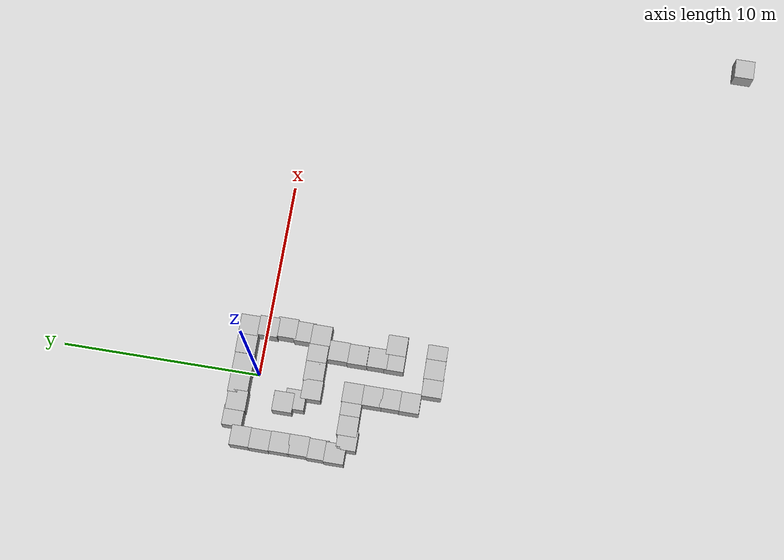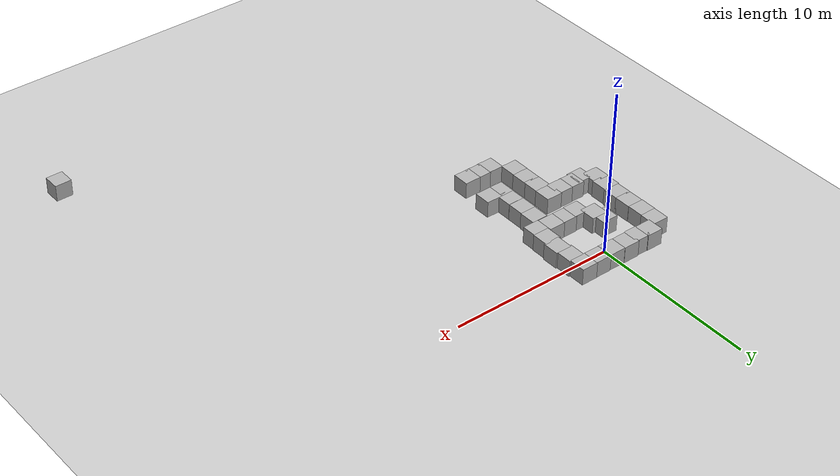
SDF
<sdf version='1.10'>
  <world name='empty'>
    <physics name='1ms' type='ode'>
      <max_step_size>0.01</max_step_size>
      <real_time_factor>1</real_time_factor>
      <real_time_update_rate>100</real_time_update_rate>
    </physics>
    <plugin name='gz::sim::systems::Physics' filename='gz-sim-physics-system'/>
    <plugin name='gz::sim::systems::UserCommands' filename='gz-sim-user-commands-system'/>
    <plugin name='gz::sim::systems::SceneBroadcaster' filename='gz-sim-scene-broadcaster-system'/>
    <plugin name='gz::sim::systems::Contact' filename='gz-sim-contact-system'/>
    <gravity>0 0 -9.8000000000000007</gravity>
    <magnetic_field>5.5644999999999998e-06 2.2875799999999999e-05 -4.2388400000000002e-05</magnetic_field>
    <atmosphere type='adiabatic'/>
    <scene>
      <ambient>0.400000006 0.400000006 0.400000006 1</ambient>
      <background>0.699999988 0.699999988 0.699999988 1</background>
      <shadows>true</shadows>
    </scene>
    <model name='ground_plane'>
      <static>true</static>
      <link name='link'>
        <collision name='collision'>
          <geometry>
            <plane>
              <normal>0 0 1</normal>
              <size>100 100</size>
            </plane>
          </geometry>
          <surface>
            <friction>
              <ode/>
            </friction>
            <bounce/>
            <contact/>
          </surface>
        </collision>
        <visual name='visual'>
          <geometry>
            <plane>
              <normal>0 0 1</normal>
              <size>100 100</size>
            </plane>
          </geometry>
          <material>
            <ambient>0.800000012 0.800000012 0.800000012 1</ambient>
            <diffuse>0.800000012 0.800000012 0.800000012 1</diffuse>
            <specular>0.800000012 0.800000012 0.800000012 1</specular>
          </material>
        </visual>
        <pose>0 0 0 0 0 0</pose>
        <inertial>
          <pose>0 0 0 0 0 0</pose>
          <mass>1</mass>
          <inertia>
            <ixx>1</ixx>
            <ixy>0</ixy>
            <ixz>0</ixz>
            <iyy>1</iyy>
            <iyz>0</iyz>
            <izz>1</izz>
          </inertia>
        </inertial>
        <enable_wind>false</enable_wind>
      </link>
      <pose>0 0 0 0 0 0</pose>
      <self_collide>false</self_collide>
    </model>
    <model name='box'>
      <pose>-0.46231014821973282 -2.8007523237210812 0.49999999850826193 3.3184219064231324e-08 -3.6042765376233806e-08 0.00028884011541206473</pose>
      <link name='box_link'>
        <inertial>
          <inertia>
            <ixx>0.16666</ixx>
            <ixy>0</ixy>
            <ixz>0</ixz>
            <iyy>0.16666</iyy>
            <iyz>0</iyz>
            <izz>0.16666</izz>
          </inertia>
          <mass>1</mass>
          <pose>0 0 0 0 0 0</pose>
        </inertial>
        <collision name='box_collision'>
          <geometry>
            <box>
              <size>1 1 1</size>
            </box>
          </geometry>
          <surface>
            <friction>
              <ode/>
            </friction>
            <bounce/>
            <contact/>
          </surface>
        </collision>
        <visual name='box_visual'>
          <geometry>
            <box>
              <size>1 1 1</size>
            </box>
          </geometry>
          <material>
            <ambient>0.300000012 0.300000012 0.300000012 1</ambient>
            <diffuse>0.699999988 0.699999988 0.699999988 1</diffuse>
            <specular>1 1 1 1</specular>
          </material>
        </visual>
        <pose>0 0 0 0 0 0</pose>
        <enable_wind>false</enable_wind>
      </link>
      <static>false</static>
      <self_collide>false</self_collide>
    </model>
    <model name='box_0'>
      <pose>0.45757162777259169 -2.7680361309008594 0.49999999189633754 1.0606111420421139e-08 -2.0301614148831082e-08 8.9467876404793617e-07</pose>
      <link name='box_link'>
        <inertial>
          <inertia>
            <ixx>0.16666</ixx>
            <ixy>0</ixy>
            <ixz>0</ixz>
            <iyy>0.16666</iyy>
            <iyz>0</iyz>
            <izz>0.16666</izz>
          </inertia>
          <mass>1</mass>
          <pose>0 0 0 0 0 0</pose>
        </inertial>
        <collision name='box_collision'>
          <geometry>
            <box>
              <size>1 1 1</size>
            </box>
          </geometry>
          <surface>
            <friction>
              <ode/>
            </friction>
            <bounce/>
            <contact/>
          </surface>
        </collision>
        <visual name='box_visual'>
          <geometry>
            <box>
              <size>1 1 1</size>
            </box>
          </geometry>
          <material>
            <ambient>0.300000012 0.300000012 0.300000012 1</ambient>
            <diffuse>0.699999988 0.699999988 0.699999988 1</diffuse>
            <specular>1 1 1 1</specular>
          </material>
        </visual>
        <pose>0 0 0 0 0 0</pose>
        <enable_wind>false</enable_wind>
      </link>
      <static>false</static>
      <self_collide>false</self_collide>
    </model>
    <model name='box_1'>
      <pose>1.3306659757281374 -2.7586643185917725 0.49999999096088388 -1.7392410454047729e-09 2.0081837951053886e-08 2.491828952487131e-07</pose>
      <link name='box_link'>
        <inertial>
          <inertia>
            <ixx>0.16666</ixx>
            <ixy>0</ixy>
            <ixz>0</ixz>
            <iyy>0.16666</iyy>
            <iyz>0</iyz>
            <izz>0.16666</izz>
          </inertia>
          <mass>1</mass>
          <pose>0 0 0 0 0 0</pose>
        </inertial>
        <collision name='box_collision'>
          <geometry>
            <box>
              <size>1 1 1</size>
            </box>
          </geometry>
          <surface>
            <friction>
              <ode/>
            </friction>
            <bounce/>
            <contact/>
          </surface>
        </collision>
        <visual name='box_visual'>
          <geometry>
            <box>
              <size>1 1 1</size>
            </box>
          </geometry>
          <material>
            <ambient>0.300000012 0.300000012 0.300000012 1</ambient>
            <diffuse>0.699999988 0.699999988 0.699999988 1</diffuse>
            <specular>1 1 1 1</specular>
          </material>
        </visual>
        <pose>0 0 0 0 0 0</pose>
        <enable_wind>false</enable_wind>
      </link>
      <static>false</static>
      <self_collide>false</self_collide>
    </model>
    <model name='box_2'>
      <pose>2.3306659612493656 -2.787174723107015 0.49999999737826462 3.4503554564486201e-08 2.946792865070553e-08 2.4148821971305719e-07</pose>
      <link name='box_link'>
        <inertial>
          <inertia>
            <ixx>0.16666</ixx>
            <ixy>0</ixy>
            <ixz>0</ixz>
            <iyy>0.16666</iyy>
            <iyz>0</iyz>
            <izz>0.16666</izz>
          </inertia>
          <mass>1</mass>
          <pose>0 0 0 0 0 0</pose>
        </inertial>
        <collision name='box_collision'>
          <geometry>
            <box>
              <size>1 1 1</size>
            </box>
          </geometry>
          <surface>
            <friction>
              <ode/>
            </friction>
            <bounce/>
            <contact/>
          </surface>
        </collision>
        <visual name='box_visual'>
          <geometry>
            <box>
              <size>1 1 1</size>
            </box>
          </geometry>
          <material>
            <ambient>0.300000012 0.300000012 0.300000012 1</ambient>
            <diffuse>0.699999988 0.699999988 0.699999988 1</diffuse>
            <specular>1 1 1 1</specular>
          </material>
        </visual>
        <pose>0 0 0 0 0 0</pose>
        <enable_wind>false</enable_wind>
      </link>
      <static>false</static>
      <self_collide>false</self_collide>
    </model>
    <model name='box_3'>
      <pose>2.3600774885623452 -1.9470473748627266 0.50000003345574462 1.0278935913985194e-07 -2.2012120489651564e-09 3.9431460759859238e-07</pose>
      <link name='box_link'>
        <inertial>
          <inertia>
            <ixx>0.16666</ixx>
            <ixy>0</ixy>
            <ixz>0</ixz>
            <iyy>0.16666</iyy>
            <iyz>0</iyz>
            <izz>0.16666</izz>
          </inertia>
          <mass>1</mass>
          <pose>0 0 0 0 0 0</pose>
        </inertial>
        <collision name='box_collision'>
          <geometry>
            <box>
              <size>1 1 1</size>
            </box>
          </geometry>
          <surface>
            <friction>
              <ode/>
            </friction>
            <bounce/>
            <contact/>
          </surface>
        </collision>
        <visual name='box_visual'>
          <geometry>
            <box>
              <size>1 1 1</size>
            </box>
          </geometry>
          <material>
            <ambient>0.300000012 0.300000012 0.300000012 1</ambient>
            <diffuse>0.699999988 0.699999988 0.699999988 1</diffuse>
            <specular>1 1 1 1</specular>
          </material>
        </visual>
        <pose>0 0 0 0 0 0</pose>
        <enable_wind>false</enable_wind>
      </link>
      <static>false</static>
      <self_collide>false</self_collide>
    </model>
    <model name='box_4'>
      <pose>2.4359946241116783 -1.0352860710084204 0.49999998940007151 8.3460843535615869e-09 5.7418235312635529e-09 2.0379947642606503e-07</pose>
      <link name='box_link'>
        <inertial>
          <inertia>
            <ixx>0.16666</ixx>
            <ixy>0</ixy>
            <ixz>0</ixz>
            <iyy>0.16666</iyy>
            <iyz>0</iyz>
            <izz>0.16666</izz>
          </inertia>
          <mass>1</mass>
          <pose>0 0 0 0 0 0</pose>
        </inertial>
        <collision name='box_collision'>
          <geometry>
            <box>
              <size>1 1 1</size>
            </box>
          </geometry>
          <surface>
            <friction>
              <ode/>
            </friction>
            <bounce/>
            <contact/>
          </surface>
        </collision>
        <visual name='box_visual'>
          <geometry>
            <box>
              <size>1 1 1</size>
            </box>
          </geometry>
          <material>
            <ambient>0.300000012 0.300000012 0.300000012 1</ambient>
            <diffuse>0.699999988 0.699999988 0.699999988 1</diffuse>
            <specular>1 1 1 1</specular>
          </material>
        </visual>
        <pose>0 0 0 0 0 0</pose>
        <enable_wind>false</enable_wind>
      </link>
      <static>false</static>
      <self_collide>false</self_collide>
    </model>
    <model name='box_5'>
      <pose>2.3600765884650095 -0.10545765165537074 0.49999999075475821 -2.0616440690057439e-08 -2.2519022345955068e-09 1.1841850875562475e-07</pose>
      <link name='box_link'>
        <inertial>
          <inertia>
            <ixx>0.16666</ixx>
            <ixy>0</ixy>
            <ixz>0</ixz>
            <iyy>0.16666</iyy>
            <iyz>0</iyz>
            <izz>0.16666</izz>
          </inertia>
          <mass>1</mass>
          <pose>0 0 0 0 0 0</pose>
        </inertial>
        <collision name='box_collision'>
          <geometry>
            <box>
              <size>1 1 1</size>
            </box>
          </geometry>
          <surface>
            <friction>
              <ode/>
            </friction>
            <bounce/>
            <contact/>
          </surface>
        </collision>
        <visual name='box_visual'>
          <geometry>
            <box>
              <size>1 1 1</size>
            </box>
          </geometry>
          <material>
            <ambient>0.300000012 0.300000012 0.300000012 1</ambient>
            <diffuse>0.699999988 0.699999988 0.699999988 1</diffuse>
            <specular>1 1 1 1</specular>
          </material>
        </visual>
        <pose>0 0 0 0 0 0</pose>
        <enable_wind>false</enable_wind>
      </link>
      <static>false</static>
      <self_collide>false</self_collide>
    </model>
    <model name='box_6'>
      <pose>2.2846531374119463 0.8474247673059172 0.49999998850259647 -1.5037086403888694e-08 7.9669379731509246e-09 6.4849796673212504e-07</pose>
      <link name='box_link'>
        <inertial>
          <inertia>
            <ixx>0.16666</ixx>
            <ixy>0</ixy>
            <ixz>0</ixz>
            <iyy>0.16666</iyy>
            <iyz>0</iyz>
            <izz>0.16666</izz>
          </inertia>
          <mass>1</mass>
          <pose>0 0 0 0 0 0</pose>
        </inertial>
        <collision name='box_collision'>
          <geometry>
            <box>
              <size>1 1 1</size>
            </box>
          </geometry>
          <surface>
            <friction>
              <ode/>
            </friction>
            <bounce/>
            <contact/>
          </surface>
        </collision>
        <visual name='box_visual'>
          <geometry>
            <box>
              <size>1 1 1</size>
            </box>
          </geometry>
          <material>
            <ambient>0.300000012 0.300000012 0.300000012 1</ambient>
            <diffuse>0.699999988 0.699999988 0.699999988 1</diffuse>
            <specular>1 1 1 1</specular>
          </material>
        </visual>
        <pose>0 0 0 0 0 0</pose>
        <enable_wind>false</enable_wind>
      </link>
      <static>false</static>
      <self_collide>false</self_collide>
    </model>
    <model name='box_7'>
      <pose>1.3165730865357361 0.82990761327570417 0.50000002879560579 -1.8003449641016264e-08 -8.9972798193831952e-08 0.0025438147975501168</pose>
      <link name='box_link'>
        <inertial>
          <inertia>
            <ixx>0.16666</ixx>
            <ixy>0</ixy>
            <ixz>0</ixz>
            <iyy>0.16666</iyy>
            <iyz>0</iyz>
            <izz>0.16666</izz>
          </inertia>
          <mass>1</mass>
          <pose>0 0 0 0 0 0</pose>
        </inertial>
        <collision name='box_collision'>
          <geometry>
            <box>
              <size>1 1 1</size>
            </box>
          </geometry>
          <surface>
            <friction>
              <ode/>
            </friction>
            <bounce/>
            <contact/>
          </surface>
        </collision>
        <visual name='box_visual'>
          <geometry>
            <box>
              <size>1 1 1</size>
            </box>
          </geometry>
          <material>
            <ambient>0.300000012 0.300000012 0.300000012 1</ambient>
            <diffuse>0.699999988 0.699999988 0.699999988 1</diffuse>
            <specular>1 1 1 1</specular>
          </material>
        </visual>
        <pose>0 0 0 0 0 0</pose>
        <enable_wind>false</enable_wind>
      </link>
      <static>false</static>
      <self_collide>false</self_collide>
    </model>
    <model name='box_8'>
      <pose>0.31226063415860911 0.81274707296286464 0.49999999028316078 -4.9608076977865652e-10 1.9787767466195089e-08 1.6066220259875388e-07</pose>
      <link name='box_link'>
        <inertial>
          <inertia>
            <ixx>0.16666</ixx>
            <ixy>0</ixy>
            <ixz>0</ixz>
            <iyy>0.16666</iyy>
            <iyz>0</iyz>
            <izz>0.16666</izz>
          </inertia>
          <mass>1</mass>
          <pose>0 0 0 0 0 0</pose>
        </inertial>
        <collision name='box_collision'>
          <geometry>
            <box>
              <size>1 1 1</size>
            </box>
          </geometry>
          <surface>
            <friction>
              <ode/>
            </friction>
            <bounce/>
            <contact/>
          </surface>
        </collision>
        <visual name='box_visual'>
          <geometry>
            <box>
              <size>1 1 1</size>
            </box>
          </geometry>
          <material>
            <ambient>0.300000012 0.300000012 0.300000012 1</ambient>
            <diffuse>0.699999988 0.699999988 0.699999988 1</diffuse>
            <specular>1 1 1 1</specular>
          </material>
        </visual>
        <pose>0 0 0 0 0 0</pose>
        <enable_wind>false</enable_wind>
      </link>
      <static>false</static>
      <self_collide>false</self_collide>
    </model>
    <model name='box_9'>
      <pose>-1.0762400000000001 -2.069 0.5 -4.1608699999999983e-09 2.5407600000000022e-07 1.7331200000000005e-06</pose>
      <link name='box_link'>
        <inertial>
          <inertia>
            <ixx>0.16666</ixx>
            <ixy>0</ixy>
            <ixz>0</ixz>
            <iyy>0.16666</iyy>
            <iyz>0</iyz>
            <izz>0.16666</izz>
          </inertia>
          <mass>1</mass>
          <pose>0 0 0 0 0 0</pose>
        </inertial>
        <collision name='box_collision'>
          <geometry>
            <box>
              <size>1 1 1</size>
            </box>
          </geometry>
          <surface>
            <friction>
              <ode/>
            </friction>
            <bounce/>
            <contact/>
          </surface>
        </collision>
        <visual name='box_visual'>
          <geometry>
            <box>
              <size>1 1 1</size>
            </box>
          </geometry>
          <material>
            <ambient>0.300000012 0.300000012 0.300000012 1</ambient>
            <diffuse>0.699999988 0.699999988 0.699999988 1</diffuse>
            <specular>1 1 1 1</specular>
          </material>
        </visual>
        <pose>0 0 0 0 0 0</pose>
        <enable_wind>false</enable_wind>
      </link>
      <static>false</static>
      <self_collide>false</self_collide>
    </model>
    <model name='box_10'>
      <pose>-1.2844958271402318 -1.4974475946622212 0.49999999021171826 -1.9526379733045971e-08 -2.0693910197921286e-11 2.9288672032092372e-06</pose>
      <link name='box_link'>
        <inertial>
          <inertia>
            <ixx>0.16666</ixx>
            <ixy>0</ixy>
            <ixz>0</ixz>
            <iyy>0.16666</iyy>
            <iyz>0</iyz>
            <izz>0.16666</izz>
          </inertia>
          <mass>1</mass>
          <pose>0 0 0 0 0 0</pose>
        </inertial>
        <collision name='box_collision'>
          <geometry>
            <box>
              <size>1 1 1</size>
            </box>
          </geometry>
          <surface>
            <friction>
              <ode/>
            </friction>
            <bounce/>
            <contact/>
          </surface>
        </collision>
        <visual name='box_visual'>
          <geometry>
            <box>
              <size>1 1 1</size>
            </box>
          </geometry>
          <material>
            <ambient>0.300000012 0.300000012 0.300000012 1</ambient>
            <diffuse>0.699999988 0.699999988 0.699999988 1</diffuse>
            <specular>1 1 1 1</specular>
          </material>
        </visual>
        <pose>0 0 0 0 0 0</pose>
        <enable_wind>false</enable_wind>
      </link>
      <static>false</static>
      <self_collide>false</self_collide>
    </model>
    <model name='box_11'>
      <pose>-0.68773934846194673 0.82527752154240563 0.49999999031476183 -7.4899146793528042e-10 1.9858012016734597e-08 1.6242129367132441e-07</pose>
      <link name='box_link'>
        <inertial>
          <inertia>
            <ixx>0.16666</ixx>
            <ixy>0</ixy>
            <ixz>0</ixz>
            <iyy>0.16666</iyy>
            <iyz>0</iyz>
            <izz>0.16666</izz>
          </inertia>
          <mass>1</mass>
          <pose>0 0 0 0 0 0</pose>
        </inertial>
        <collision name='box_collision'>
          <geometry>
            <box>
              <size>1 1 1</size>
            </box>
          </geometry>
          <surface>
            <friction>
              <ode/>
            </friction>
            <bounce/>
            <contact/>
          </surface>
        </collision>
        <visual name='box_visual'>
          <geometry>
            <box>
              <size>1 1 1</size>
            </box>
          </geometry>
          <material>
            <ambient>0.300000012 0.300000012 0.300000012 1</ambient>
            <diffuse>0.699999988 0.699999988 0.699999988 1</diffuse>
            <specular>1 1 1 1</specular>
          </material>
        </visual>
        <pose>0 0 0 0 0 0</pose>
        <enable_wind>false</enable_wind>
      </link>
      <static>false</static>
      <self_collide>false</self_collide>
    </model>
    <model name='box_12'>
      <pose>-1.5638700000000001 0.78282399999999996 0.5 -2.6156400000000008e-08 8.465710000000002e-08 2.2988699999999999e-08</pose>
      <link name='box_link'>
        <inertial>
          <inertia>
            <ixx>0.16666</ixx>
            <ixy>0</ixy>
            <ixz>0</ixz>
            <iyy>0.16666</iyy>
            <iyz>0</iyz>
            <izz>0.16666</izz>
          </inertia>
          <mass>1</mass>
          <pose>0 0 0 0 0 0</pose>
        </inertial>
        <collision name='box_collision'>
          <geometry>
            <box>
              <size>1 1 1</size>
            </box>
          </geometry>
          <surface>
            <friction>
              <ode/>
            </friction>
            <bounce/>
            <contact/>
          </surface>
        </collision>
        <visual name='box_visual'>
          <geometry>
            <box>
              <size>1 1 1</size>
            </box>
          </geometry>
          <material>
            <ambient>0.300000012 0.300000012 0.300000012 1</ambient>
            <diffuse>0.699999988 0.699999988 0.699999988 1</diffuse>
            <specular>1 1 1 1</specular>
          </material>
        </visual>
        <pose>0 0 0 0 0 0</pose>
        <enable_wind>false</enable_wind>
      </link>
      <static>false</static>
      <self_collide>false</self_collide>
    </model>
    <model name='box_13'>
      <pose>-3.2949591378675289 0.2602838231517311 0.49999999933900557 -3.6714972710687992e-08 -3.663110694616601e-08 8.5185663700374556e-07</pose>
      <link name='box_link'>
        <inertial>
          <inertia>
            <ixx>0.16666</ixx>
            <ixy>0</ixy>
            <ixz>0</ixz>
            <iyy>0.16666</iyy>
            <iyz>0</iyz>
            <izz>0.16666</izz>
          </inertia>
          <mass>1</mass>
          <pose>0 0 0 0 0 0</pose>
        </inertial>
        <collision name='box_collision'>
          <geometry>
            <box>
              <size>1 1 1</size>
            </box>
          </geometry>
          <surface>
            <friction>
              <ode/>
            </friction>
            <bounce/>
            <contact/>
          </surface>
        </collision>
        <visual name='box_visual'>
          <geometry>
            <box>
              <size>1 1 1</size>
            </box>
          </geometry>
          <material>
            <ambient>0.300000012 0.300000012 0.300000012 1</ambient>
            <diffuse>0.699999988 0.699999988 0.699999988 1</diffuse>
            <specular>1 1 1 1</specular>
          </material>
        </visual>
        <pose>0 0 0 0 0 0</pose>
        <enable_wind>false</enable_wind>
      </link>
      <static>false</static>
      <self_collide>false</self_collide>
    </model>
    <model name='box_14'>
      <pose>-2.3682771581531692 0.81293833359732315 0.49999999040469273 -4.8644965362523836e-10 -1.9660429321628531e-08 4.468410548385612e-07</pose>
      <link name='box_link'>
        <inertial>
          <inertia>
            <ixx>0.16666</ixx>
            <ixy>0</ixy>
            <ixz>0</ixz>
            <iyy>0.16666</iyy>
            <iyz>0</iyz>
            <izz>0.16666</izz>
          </inertia>
          <mass>1</mass>
          <pose>0 0 0 0 0 0</pose>
        </inertial>
        <collision name='box_collision'>
          <geometry>
            <box>
              <size>1 1 1</size>
            </box>
          </geometry>
          <surface>
            <friction>
              <ode/>
            </friction>
            <bounce/>
            <contact/>
          </surface>
        </collision>
        <visual name='box_visual'>
          <geometry>
            <box>
              <size>1 1 1</size>
            </box>
          </geometry>
          <material>
            <ambient>0.300000012 0.300000012 0.300000012 1</ambient>
            <diffuse>0.699999988 0.699999988 0.699999988 1</diffuse>
            <specular>1 1 1 1</specular>
          </material>
        </visual>
        <pose>0 0 0 0 0 0</pose>
        <enable_wind>false</enable_wind>
      </link>
      <static>false</static>
      <self_collide>false</self_collide>
    </model>
    <model name='box_15'>
      <pose>-3.3139081951275409 -0.70650816753915779 0.49999999133164785 -2.1078780603230077e-08 3.8568460558797437e-09 6.5859339331094907e-07</pose>
      <link name='box_link'>
        <inertial>
          <inertia>
            <ixx>0.16666</ixx>
            <ixy>0</ixy>
            <ixz>0</ixz>
            <iyy>0.16666</iyy>
            <iyz>0</iyz>
            <izz>0.16666</izz>
          </inertia>
          <mass>1</mass>
          <pose>0 0 0 0 0 0</pose>
        </inertial>
        <collision name='box_collision'>
          <geometry>
            <box>
              <size>1 1 1</size>
            </box>
          </geometry>
          <surface>
            <friction>
              <ode/>
            </friction>
            <bounce/>
            <contact/>
          </surface>
        </collision>
        <visual name='box_visual'>
          <geometry>
            <box>
              <size>1 1 1</size>
            </box>
          </geometry>
          <material>
            <ambient>0.300000012 0.300000012 0.300000012 1</ambient>
            <diffuse>0.699999988 0.699999988 0.699999988 1</diffuse>
            <specular>1 1 1 1</specular>
          </material>
        </visual>
        <pose>0 0 0 0 0 0</pose>
        <enable_wind>false</enable_wind>
      </link>
      <static>false</static>
      <self_collide>false</self_collide>
    </model>
    <model name='box_16'>
      <pose>-3.2980796052084544 -1.7065036848377897 0.4999999923795545 -2.0108513573953034e-08 -1.7926865342844833e-08 1.2508621676115749e-07</pose>
      <link name='box_link'>
        <inertial>
          <inertia>
            <ixx>0.16666</ixx>
            <ixy>0</ixy>
            <ixz>0</ixz>
            <iyy>0.16666</iyy>
            <iyz>0</iyz>
            <izz>0.16666</izz>
          </inertia>
          <mass>1</mass>
          <pose>0 0 0 0 0 0</pose>
        </inertial>
        <collision name='box_collision'>
          <geometry>
            <box>
              <size>1 1 1</size>
            </box>
          </geometry>
          <surface>
            <friction>
              <ode/>
            </friction>
            <bounce/>
            <contact/>
          </surface>
        </collision>
        <visual name='box_visual'>
          <geometry>
            <box>
              <size>1 1 1</size>
            </box>
          </geometry>
          <material>
            <ambient>0.300000012 0.300000012 0.300000012 1</ambient>
            <diffuse>0.699999988 0.699999988 0.699999988 1</diffuse>
            <specular>1 1 1 1</specular>
          </material>
        </visual>
        <pose>0 0 0 0 0 0</pose>
        <enable_wind>false</enable_wind>
      </link>
      <static>false</static>
      <self_collide>false</self_collide>
    </model>
    <model name='box_17'>
      <pose>-3.2980800023235588 -2.6345272917793663 0.4999999904973455 1.9913674531394581e-08 9.4283583943932923e-10 -7.7887016027334096e-07</pose>
      <link name='box_link'>
        <inertial>
          <inertia>
            <ixx>0.16666</ixx>
            <ixy>0</ixy>
            <ixz>0</ixz>
            <iyy>0.16666</iyy>
            <iyz>0</iyz>
            <izz>0.16666</izz>
          </inertia>
          <mass>1</mass>
          <pose>0 0 0 0 0 0</pose>
        </inertial>
        <collision name='box_collision'>
          <geometry>
            <box>
              <size>1 1 1</size>
            </box>
          </geometry>
          <surface>
            <friction>
              <ode/>
            </friction>
            <bounce/>
            <contact/>
          </surface>
        </collision>
        <visual name='box_visual'>
          <geometry>
            <box>
              <size>1 1 1</size>
            </box>
          </geometry>
          <material>
            <ambient>0.300000012 0.300000012 0.300000012 1</ambient>
            <diffuse>0.699999988 0.699999988 0.699999988 1</diffuse>
            <specular>1 1 1 1</specular>
          </material>
        </visual>
        <pose>0 0 0 0 0 0</pose>
        <enable_wind>false</enable_wind>
      </link>
      <static>false</static>
      <self_collide>false</self_collide>
    </model>
    <model name='box_18'>
      <pose>-3.3460671399095836 -3.5936257747056461 0.49999999414163443 2.7487850921003838e-08 -1.5776100157176003e-08 -1.9031998499414278e-06</pose>
      <link name='box_link'>
        <inertial>
          <inertia>
            <ixx>0.16666</ixx>
            <ixy>0</ixy>
            <ixz>0</ixz>
            <iyy>0.16666</iyy>
            <iyz>0</iyz>
            <izz>0.16666</izz>
          </inertia>
          <mass>1</mass>
          <pose>0 0 0 0 0 0</pose>
        </inertial>
        <collision name='box_collision'>
          <geometry>
            <box>
              <size>1 1 1</size>
            </box>
          </geometry>
          <surface>
            <friction>
              <ode/>
            </friction>
            <bounce/>
            <contact/>
          </surface>
        </collision>
        <visual name='box_visual'>
          <geometry>
            <box>
              <size>1 1 1</size>
            </box>
          </geometry>
          <material>
            <ambient>0.300000012 0.300000012 0.300000012 1</ambient>
            <diffuse>0.699999988 0.699999988 0.699999988 1</diffuse>
            <specular>1 1 1 1</specular>
          </material>
        </visual>
        <pose>0 0 0 0 0 0</pose>
        <enable_wind>false</enable_wind>
      </link>
      <static>false</static>
      <self_collide>false</self_collide>
    </model>
    <model name='box_19'>
      <pose>-3.3911743397951066 -4.4584433119770761 0.5000000497990732 1.3625320493559654e-07 -7.7162357127052892e-09 -1.7934927548212296e-06</pose>
      <link name='box_link'>
        <inertial>
          <inertia>
            <ixx>0.16666</ixx>
            <ixy>0</ixy>
            <ixz>0</ixz>
            <iyy>0.16666</iyy>
            <iyz>0</iyz>
            <izz>0.16666</izz>
          </inertia>
          <mass>1</mass>
          <pose>0 0 0 0 0 0</pose>
        </inertial>
        <collision name='box_collision'>
          <geometry>
            <box>
              <size>1 1 1</size>
            </box>
          </geometry>
          <surface>
            <friction>
              <ode/>
            </friction>
            <bounce/>
            <contact/>
          </surface>
        </collision>
        <visual name='box_visual'>
          <geometry>
            <box>
              <size>1 1 1</size>
            </box>
          </geometry>
          <material>
            <ambient>0.300000012 0.300000012 0.300000012 1</ambient>
            <diffuse>0.699999988 0.699999988 0.699999988 1</diffuse>
            <specular>1 1 1 1</specular>
          </material>
        </visual>
        <pose>0 0 0 0 0 0</pose>
        <enable_wind>false</enable_wind>
      </link>
      <static>false</static>
      <self_collide>false</self_collide>
    </model>
    <model name='box_20'>
      <pose>-2.6606930739880057 -4.945085969947761 0.4999999948791285 -5.3371985880720726e-09 -2.7557180014724954e-08 -3.8636446668341654e-07</pose>
      <link name='box_link'>
        <inertial>
          <inertia>
            <ixx>0.16666</ixx>
            <ixy>0</ixy>
            <ixz>0</ixz>
            <iyy>0.16666</iyy>
            <iyz>0</iyz>
            <izz>0.16666</izz>
          </inertia>
          <mass>1</mass>
          <pose>0 0 0 0 0 0</pose>
        </inertial>
        <collision name='box_collision'>
          <geometry>
            <box>
              <size>1 1 1</size>
            </box>
          </geometry>
          <surface>
            <friction>
              <ode/>
            </friction>
            <bounce/>
            <contact/>
          </surface>
        </collision>
        <visual name='box_visual'>
          <geometry>
            <box>
              <size>1 1 1</size>
            </box>
          </geometry>
          <material>
            <ambient>0.300000012 0.300000012 0.300000012 1</ambient>
            <diffuse>0.699999988 0.699999988 0.699999988 1</diffuse>
            <specular>1 1 1 1</specular>
          </material>
        </visual>
        <pose>0 0 0 0 0 0</pose>
        <enable_wind>false</enable_wind>
      </link>
      <static>false</static>
      <self_collide>false</self_collide>
    </model>
    <model name='box_21'>
      <pose>-1.9615100000000001 -4.8669900000000004 0.5 5.736239999999999e-08 1.8360400000000006e-07 -1.3615100000000007e-07</pose>
      <link name='box_link'>
        <inertial>
          <inertia>
            <ixx>0.16666</ixx>
            <ixy>0</ixy>
            <ixz>0</ixz>
            <iyy>0.16666</iyy>
            <iyz>0</iyz>
            <izz>0.16666</izz>
          </inertia>
          <mass>1</mass>
          <pose>0 0 0 0 0 0</pose>
        </inertial>
        <collision name='box_collision'>
          <geometry>
            <box>
              <size>1 1 1</size>
            </box>
          </geometry>
          <surface>
            <friction>
              <ode/>
            </friction>
            <bounce/>
            <contact/>
          </surface>
        </collision>
        <visual name='box_visual'>
          <geometry>
            <box>
              <size>1 1 1</size>
            </box>
          </geometry>
          <material>
            <ambient>0.300000012 0.300000012 0.300000012 1</ambient>
            <diffuse>0.699999988 0.699999988 0.699999988 1</diffuse>
            <specular>1 1 1 1</specular>
          </material>
        </visual>
        <pose>0 0 0 0 0 0</pose>
        <enable_wind>false</enable_wind>
      </link>
      <static>false</static>
      <self_collide>false</self_collide>
    </model>
    <model name='box_22'>
      <pose>-1.1240667176309846 -4.8613512153242491 0.49999999665586797 -2.7112850065676865e-08 3.0974743208897554e-08 2.3323847083325827e-06</pose>
      <link name='box_link'>
        <inertial>
          <inertia>
            <ixx>0.16666</ixx>
            <ixy>0</ixy>
            <ixz>0</ixz>
            <iyy>0.16666</iyy>
            <iyz>0</iyz>
            <izz>0.16666</izz>
          </inertia>
          <mass>1</mass>
          <pose>0 0 0 0 0 0</pose>
        </inertial>
        <collision name='box_collision'>
          <geometry>
            <box>
              <size>1 1 1</size>
            </box>
          </geometry>
          <surface>
            <friction>
              <ode/>
            </friction>
            <bounce/>
            <contact/>
          </surface>
        </collision>
        <visual name='box_visual'>
          <geometry>
            <box>
              <size>1 1 1</size>
            </box>
          </geometry>
          <material>
            <ambient>0.300000012 0.300000012 0.300000012 1</ambient>
            <diffuse>0.699999988 0.699999988 0.699999988 1</diffuse>
            <specular>1 1 1 1</specular>
          </material>
        </visual>
        <pose>0 0 0 0 0 0</pose>
        <enable_wind>false</enable_wind>
      </link>
      <static>false</static>
      <self_collide>false</self_collide>
    </model>
    <model name='box_23'>
      <pose>-0.3027169931707816 -4.8303448207637638 0.49999999821363927 -3.5510941305359451e-08 3.2519439944269391e-08 1.2008430861501927e-06</pose>
      <link name='box_link'>
        <inertial>
          <inertia>
            <ixx>0.16666</ixx>
            <ixy>0</ixy>
            <ixz>0</ixz>
            <iyy>0.16666</iyy>
            <iyz>0</iyz>
            <izz>0.16666</izz>
          </inertia>
          <mass>1</mass>
          <pose>0 0 0 0 0 0</pose>
        </inertial>
        <collision name='box_collision'>
          <geometry>
            <box>
              <size>1 1 1</size>
            </box>
          </geometry>
          <surface>
            <friction>
              <ode/>
            </friction>
            <bounce/>
            <contact/>
          </surface>
        </collision>
        <visual name='box_visual'>
          <geometry>
            <box>
              <size>1 1 1</size>
            </box>
          </geometry>
          <material>
            <ambient>0.300000012 0.300000012 0.300000012 1</ambient>
            <diffuse>0.699999988 0.699999988 0.699999988 1</diffuse>
            <specular>1 1 1 1</specular>
          </material>
        </visual>
        <pose>0 0 0 0 0 0</pose>
        <enable_wind>false</enable_wind>
      </link>
      <static>false</static>
      <self_collide>false</self_collide>
    </model>
    <model name='box_24'>
      <pose>1.6653122517452073 -3.7901456985256368 0.5000000138485543 -6.6898302221779277e-08 7.0372048061569544e-10 -2.221727029532983e-07</pose>
      <link name='box_link'>
        <inertial>
          <inertia>
            <ixx>0.16666</ixx>
            <ixy>0</ixy>
            <ixz>0</ixz>
            <iyy>0.16666</iyy>
            <iyz>0</iyz>
            <izz>0.16666</izz>
          </inertia>
          <mass>1</mass>
          <pose>0 0 0 0 0 0</pose>
        </inertial>
        <collision name='box_collision'>
          <geometry>
            <box>
              <size>1 1 1</size>
            </box>
          </geometry>
          <surface>
            <friction>
              <ode/>
            </friction>
            <bounce/>
            <contact/>
          </surface>
        </collision>
        <visual name='box_visual'>
          <geometry>
            <box>
              <size>1 1 1</size>
            </box>
          </geometry>
          <material>
            <ambient>0.300000012 0.300000012 0.300000012 1</ambient>
            <diffuse>0.699999988 0.699999988 0.699999988 1</diffuse>
            <specular>1 1 1 1</specular>
          </material>
        </visual>
        <pose>0 0 0 0 0 0</pose>
        <enable_wind>false</enable_wind>
      </link>
      <static>false</static>
      <self_collide>false</self_collide>
    </model>
    <model name='box_25'>
      <pose>1.6370472299494727 -4.7583085450622571 0.50000000041566917 4.0032517678808154e-08 -7.03718615665392e-10 3.2681062050380257e-07</pose>
      <link name='box_link'>
        <inertial>
          <inertia>
            <ixx>0.16666</ixx>
            <ixy>0</ixy>
            <ixz>0</ixz>
            <iyy>0.16666</iyy>
            <iyz>0</iyz>
            <izz>0.16666</izz>
          </inertia>
          <mass>1</mass>
          <pose>0 0 0 0 0 0</pose>
        </inertial>
        <collision name='box_collision'>
          <geometry>
            <box>
              <size>1 1 1</size>
            </box>
          </geometry>
          <surface>
            <friction>
              <ode/>
            </friction>
            <bounce/>
            <contact/>
          </surface>
        </collision>
        <visual name='box_visual'>
          <geometry>
            <box>
              <size>1 1 1</size>
            </box>
          </geometry>
          <material>
            <ambient>0.300000012 0.300000012 0.300000012 1</ambient>
            <diffuse>0.699999988 0.699999988 0.699999988 1</diffuse>
            <specular>1 1 1 1</specular>
          </material>
        </visual>
        <pose>0 0 0 0 0 0</pose>
        <enable_wind>false</enable_wind>
      </link>
      <static>false</static>
      <self_collide>false</self_collide>
    </model>
    <model name='box_26'>
      <pose>1.637047320045151 -5.7698892862713711 0.49999999019955504 -1.9589578740863912e-08 -2.2635199391478278e-12 2.9224761260928526e-07</pose>
      <link name='box_link'>
        <inertial>
          <inertia>
            <ixx>0.16666</ixx>
            <ixy>0</ixy>
            <ixz>0</ixz>
            <iyy>0.16666</iyy>
            <iyz>0</iyz>
            <izz>0.16666</izz>
          </inertia>
          <mass>1</mass>
          <pose>0 0 0 0 0 0</pose>
        </inertial>
        <collision name='box_collision'>
          <geometry>
            <box>
              <size>1 1 1</size>
            </box>
          </geometry>
          <surface>
            <friction>
              <ode/>
            </friction>
            <bounce/>
            <contact/>
          </surface>
        </collision>
        <visual name='box_visual'>
          <geometry>
            <box>
              <size>1 1 1</size>
            </box>
          </geometry>
          <material>
            <ambient>0.300000012 0.300000012 0.300000012 1</ambient>
            <diffuse>0.699999988 0.699999988 0.699999988 1</diffuse>
            <specular>1 1 1 1</specular>
          </material>
        </visual>
        <pose>0 0 0 0 0 0</pose>
        <enable_wind>false</enable_wind>
      </link>
      <static>false</static>
      <self_collide>false</self_collide>
    </model>
    <model name='box_27'>
      <pose>-0.31200045213889888 -5.8082541424913083 0.49999999020118469 -9.1734564143619866e-09 1.5647338381002556e-09 7.0280088229982816e-07</pose>
      <link name='box_link'>
        <inertial>
          <inertia>
            <ixx>0.16666</ixx>
            <ixy>0</ixy>
            <ixz>0</ixz>
            <iyy>0.16666</iyy>
            <iyz>0</iyz>
            <izz>0.16666</izz>
          </inertia>
          <mass>1</mass>
          <pose>0 0 0 0 0 0</pose>
        </inertial>
        <collision name='box_collision'>
          <geometry>
            <box>
              <size>1 1 1</size>
            </box>
          </geometry>
          <surface>
            <friction>
              <ode/>
            </friction>
            <bounce/>
            <contact/>
          </surface>
        </collision>
        <visual name='box_visual'>
          <geometry>
            <box>
              <size>1 1 1</size>
            </box>
          </geometry>
          <material>
            <ambient>0.300000012 0.300000012 0.300000012 1</ambient>
            <diffuse>0.699999988 0.699999988 0.699999988 1</diffuse>
            <specular>1 1 1 1</specular>
          </material>
        </visual>
        <pose>0 0 0 0 0 0</pose>
        <enable_wind>false</enable_wind>
      </link>
      <static>false</static>
      <self_collide>false</self_collide>
    </model>
    <model name='box_28'>
      <pose>19.997199999999999 -22.1873 0.5 6.2287699999999997e-22 9.3279700000000006e-22 -3.63155e-22</pose>
      <link name='box_link'>
        <inertial>
          <inertia>
            <ixx>0.16666</ixx>
            <ixy>0</ixy>
            <ixz>0</ixz>
            <iyy>0.16666</iyy>
            <iyz>0</iyz>
            <izz>0.16666</izz>
          </inertia>
          <mass>1</mass>
          <pose>0 0 0 0 0 0</pose>
        </inertial>
        <collision name='box_collision'>
          <geometry>
            <box>
              <size>1 1 1</size>
            </box>
          </geometry>
          <surface>
            <friction>
              <ode/>
            </friction>
            <bounce/>
            <contact/>
          </surface>
        </collision>
        <visual name='box_visual'>
          <geometry>
            <box>
              <size>1 1 1</size>
            </box>
          </geometry>
          <material>
            <ambient>0.300000012 0.300000012 0.300000012 1</ambient>
            <diffuse>0.699999988 0.699999988 0.699999988 1</diffuse>
            <specular>1 1 1 1</specular>
          </material>
        </visual>
        <pose>0 0 0 0 0 0</pose>
        <enable_wind>false</enable_wind>
      </link>
      <static>false</static>
      <self_collide>false</self_collide>
    </model>
    <model name='box_29'>
      <pose>1.6201836830831278 -6.6193241472402882 0.49999999616123619 2.3860020988962956e-08 -3.1510710274948989e-08 3.9344801459721007e-07</pose>
      <link name='box_link'>
        <inertial>
          <inertia>
            <ixx>0.16666</ixx>
            <ixy>0</ixy>
            <ixz>0</ixz>
            <iyy>0.16666</iyy>
            <iyz>0</iyz>
            <izz>0.16666</izz>
          </inertia>
          <mass>1</mass>
          <pose>0 0 0 0 0 0</pose>
        </inertial>
        <collision name='box_collision'>
          <geometry>
            <box>
              <size>1 1 1</size>
            </box>
          </geometry>
          <surface>
            <friction>
              <ode/>
            </friction>
            <bounce/>
            <contact/>
          </surface>
        </collision>
        <visual name='box_visual'>
          <geometry>
            <box>
              <size>1 1 1</size>
            </box>
          </geometry>
          <material>
            <ambient>0.300000012 0.300000012 0.300000012 1</ambient>
            <diffuse>0.699999988 0.699999988 0.699999988 1</diffuse>
            <specular>1 1 1 1</specular>
          </material>
        </visual>
        <pose>0 0 0 0 0 0</pose>
        <enable_wind>false</enable_wind>
      </link>
      <static>false</static>
      <self_collide>false</self_collide>
    </model>
    <model name='box_30'>
      <pose>-0.31042512930310751 -6.7171025359621206 0.49999999060021583 2.1557574854748746e-08 -5.5092882016292852e-09 1.5066188351854036e-08</pose>
      <link name='box_link'>
        <inertial>
          <inertia>
            <ixx>0.16666</ixx>
            <ixy>0</ixy>
            <ixz>0</ixz>
            <iyy>0.16666</iyy>
            <iyz>0</iyz>
            <izz>0.16666</izz>
          </inertia>
          <mass>1</mass>
          <pose>0 0 0 0 0 0</pose>
        </inertial>
        <collision name='box_collision'>
          <geometry>
            <box>
              <size>1 1 1</size>
            </box>
          </geometry>
          <surface>
            <friction>
              <ode/>
            </friction>
            <bounce/>
            <contact/>
          </surface>
        </collision>
        <visual name='box_visual'>
          <geometry>
            <box>
              <size>1 1 1</size>
            </box>
          </geometry>
          <material>
            <ambient>0.300000012 0.300000012 0.300000012 1</ambient>
            <diffuse>0.699999988 0.699999988 0.699999988 1</diffuse>
            <specular>1 1 1 1</specular>
          </material>
        </visual>
        <pose>0 0 0 0 0 0</pose>
        <enable_wind>false</enable_wind>
      </link>
      <static>false</static>
      <self_collide>false</self_collide>
    </model>
    <model name='box_31'>
      <pose>-0.32726442685360368 -7.7007010715554145 0.50000016598474462 3.6877612503536338e-07 2.0190102377039882e-08 8.4131693675690115e-07</pose>
      <link name='box_link'>
        <inertial>
          <inertia>
            <ixx>0.16666</ixx>
            <ixy>0</ixy>
            <ixz>0</ixz>
            <iyy>0.16666</iyy>
            <iyz>0</iyz>
            <izz>0.16666</izz>
          </inertia>
          <mass>1</mass>
          <pose>0 0 0 0 0 0</pose>
        </inertial>
        <collision name='box_collision'>
          <geometry>
            <box>
              <size>1 1 1</size>
            </box>
          </geometry>
          <surface>
            <friction>
              <ode/>
            </friction>
            <bounce/>
            <contact/>
          </surface>
        </collision>
        <visual name='box_visual'>
          <geometry>
            <box>
              <size>1 1 1</size>
            </box>
          </geometry>
          <material>
            <ambient>0.300000012 0.300000012 0.300000012 1</ambient>
            <diffuse>0.699999988 0.699999988 0.699999988 1</diffuse>
            <specular>1 1 1 1</specular>
          </material>
        </visual>
        <pose>0 0 0 0 0 0</pose>
        <enable_wind>false</enable_wind>
      </link>
      <static>false</static>
      <self_collide>false</self_collide>
    </model>
    <model name='box_32'>
      <pose>0.61844490210165382 -8.6775092024806781 0.49999999507494852 1.7848027345211997e-08 -2.7730527275133715e-08 0.0029959219954432108</pose>
      <link name='box_link'>
        <inertial>
          <inertia>
            <ixx>0.16666</ixx>
            <ixy>0</ixy>
            <ixz>0</ixz>
            <iyy>0.16666</iyy>
            <iyz>0</iyz>
            <izz>0.16666</izz>
          </inertia>
          <mass>1</mass>
          <pose>0 0 0 0 0 0</pose>
        </inertial>
        <collision name='box_collision'>
          <geometry>
            <box>
              <size>1 1 1</size>
            </box>
          </geometry>
          <surface>
            <friction>
              <ode/>
            </friction>
            <bounce/>
            <contact/>
          </surface>
        </collision>
        <visual name='box_visual'>
          <geometry>
            <box>
              <size>1 1 1</size>
            </box>
          </geometry>
          <material>
            <ambient>0.300000012 0.300000012 0.300000012 1</ambient>
            <diffuse>0.699999988 0.699999988 0.699999988 1</diffuse>
            <specular>1 1 1 1</specular>
          </material>
        </visual>
        <pose>0 0 0 0 0 0</pose>
        <enable_wind>false</enable_wind>
      </link>
      <static>false</static>
      <self_collide>false</self_collide>
    </model>
    <model name='box_33'>
      <pose>1.50512 -8.6513200000000001 0.5 3.6376000000000002e-07 4.2242800000000011e-07 4.7684099999999997e-08</pose>
      <link name='box_link'>
        <inertial>
          <inertia>
            <ixx>0.16666</ixx>
            <ixy>0</ixy>
            <ixz>0</ixz>
            <iyy>0.16666</iyy>
            <iyz>0</iyz>
            <izz>0.16666</izz>
          </inertia>
          <mass>1</mass>
          <pose>0 0 0 0 0 0</pose>
        </inertial>
        <collision name='box_collision'>
          <geometry>
            <box>
              <size>1 1 1</size>
            </box>
          </geometry>
          <surface>
            <friction>
              <ode/>
            </friction>
            <bounce/>
            <contact/>
          </surface>
        </collision>
        <visual name='box_visual'>
          <geometry>
            <box>
              <size>1 1 1</size>
            </box>
          </geometry>
          <material>
            <ambient>0.300000012 0.300000012 0.300000012 1</ambient>
            <diffuse>0.699999988 0.699999988 0.699999988 1</diffuse>
            <specular>1 1 1 1</specular>
          </material>
        </visual>
        <pose>0 0 0 0 0 0</pose>
        <enable_wind>false</enable_wind>
      </link>
      <static>false</static>
      <self_collide>false</self_collide>
    </model>
    <model name='box_34'>
      <pose>2.4142435648596403 -6.6108518538496908 0.49999999401953754 1.5294514652053026e-08 2.7228970226040237e-08 5.9151941920964023e-07</pose>
      <link name='box_link'>
        <inertial>
          <inertia>
            <ixx>0.16666</ixx>
            <ixy>0</ixy>
            <ixz>0</ixz>
            <iyy>0.16666</iyy>
            <iyz>0</iyz>
            <izz>0.16666</izz>
          </inertia>
          <mass>1</mass>
          <pose>0 0 0 0 0 0</pose>
        </inertial>
        <collision name='box_collision'>
          <geometry>
            <box>
              <size>1 1 1</size>
            </box>
          </geometry>
          <surface>
            <friction>
              <ode/>
            </friction>
            <bounce/>
            <contact/>
          </surface>
        </collision>
        <visual name='box_visual'>
          <geometry>
            <box>
              <size>1 1 1</size>
            </box>
          </geometry>
          <material>
            <ambient>0.300000012 0.300000012 0.300000012 1</ambient>
            <diffuse>0.699999988 0.699999988 0.699999988 1</diffuse>
            <specular>1 1 1 1</specular>
          </material>
        </visual>
        <pose>0 0 0 0 0 0</pose>
        <enable_wind>false</enable_wind>
      </link>
      <static>false</static>
      <self_collide>false</self_collide>
    </model>
    <model name='box_35'>
      <pose>2.2376549668830221 -8.6450271945974499 0.49999999030534509 2.4390107703308891e-11 1.9349436436111503e-08 4.9803509864629205e-07</pose>
      <link name='box_link'>
        <inertial>
          <inertia>
            <ixx>0.16666</ixx>
            <ixy>0</ixy>
            <ixz>0</ixz>
            <iyy>0.16666</iyy>
            <iyz>0</iyz>
            <izz>0.16666</izz>
          </inertia>
          <mass>1</mass>
          <pose>0 0 0 0 0 0</pose>
        </inertial>
        <collision name='box_collision'>
          <geometry>
            <box>
              <size>1 1 1</size>
            </box>
          </geometry>
          <surface>
            <friction>
              <ode/>
            </friction>
            <bounce/>
            <contact/>
          </surface>
        </collision>
        <visual name='box_visual'>
          <geometry>
            <box>
              <size>1 1 1</size>
            </box>
          </geometry>
          <material>
            <ambient>0.300000012 0.300000012 0.300000012 1</ambient>
            <diffuse>0.699999988 0.699999988 0.699999988 1</diffuse>
            <specular>1 1 1 1</specular>
          </material>
        </visual>
        <pose>0 0 0 0 0 0</pose>
        <enable_wind>false</enable_wind>
      </link>
      <static>false</static>
      <self_collide>false</self_collide>
    </model>
    <light name='sun' type='directional'>
      <pose>0 0 10 0 0 0</pose>
      <cast_shadows>true</cast_shadows>
      <intensity>1</intensity>
      <direction>-0.5 0.10000000000000001 -0.90000000000000002</direction>
      <diffuse>0.800000012 0.800000012 0.800000012 1</diffuse>
      <specular>0.200000003 0.200000003 0.200000003 1</specular>
      <attenuation>
        <range>1000</range>
        <linear>0.0099999997764825821</linear>
        <constant>0.89999997615814209</constant>
        <quadratic>0.0010000000474974513</quadratic>
      </attenuation>
      <spot>
        <inner_angle>0</inner_angle>
        <outer_angle>0</outer_angle>
        <falloff>0</falloff>
      </spot>
    </light>
  </world>
</sdf>
